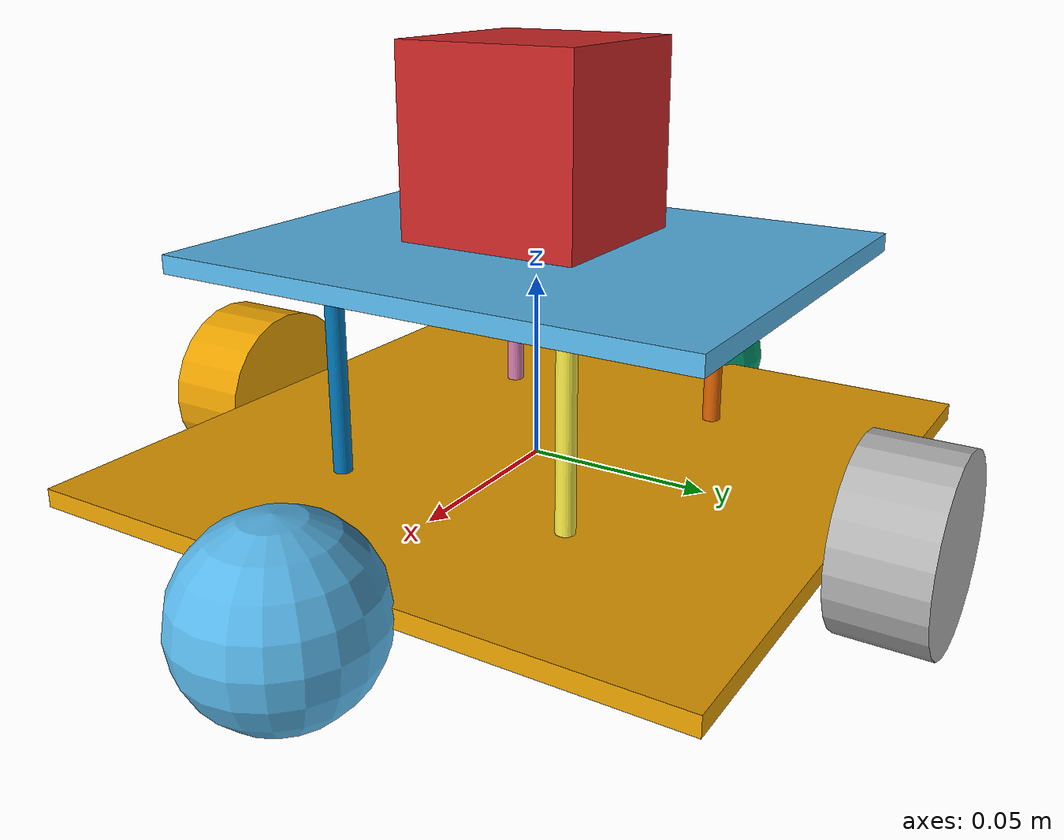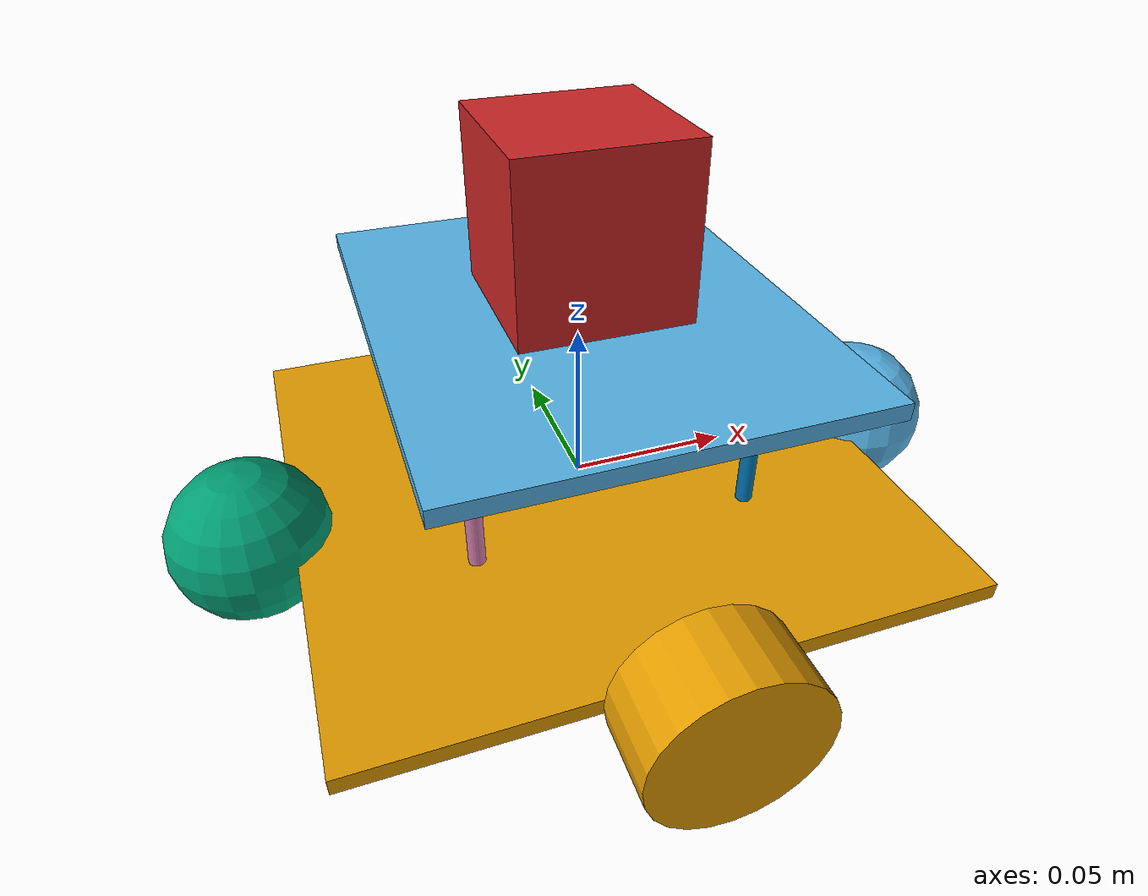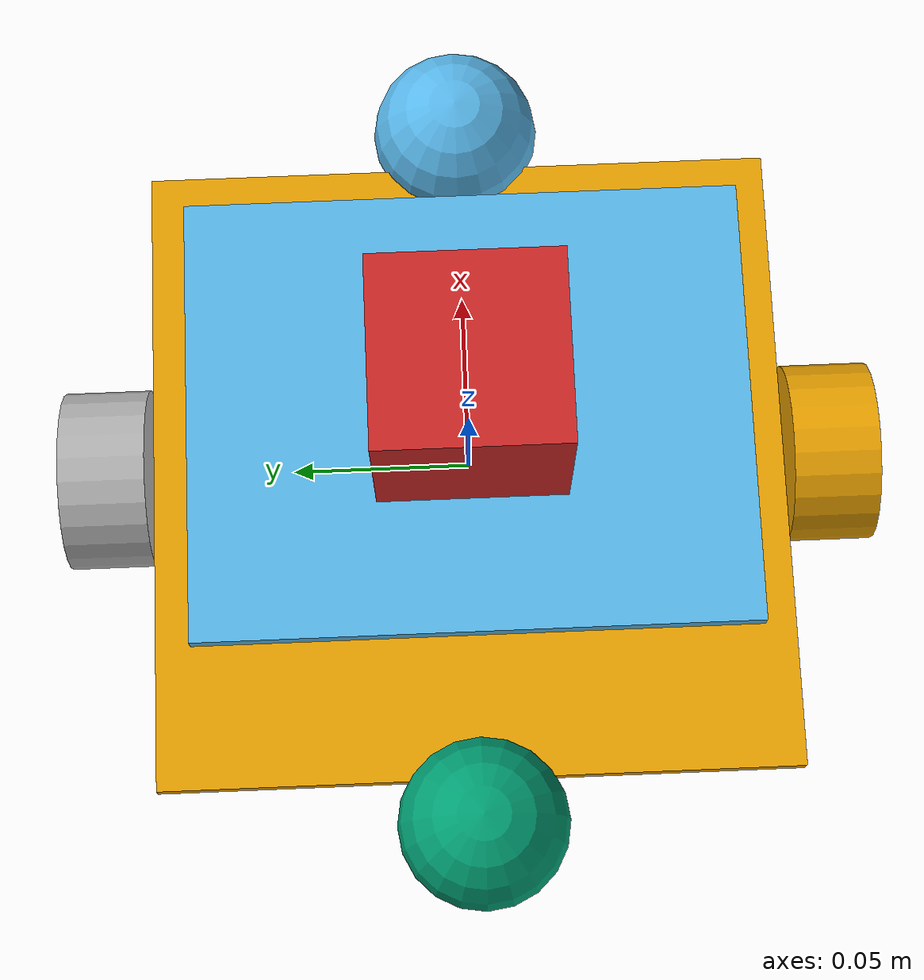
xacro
<?xml version="1.0"?>
<robot xmlns:xacro="http://www.ros.org/wiki/xacro" name="omni">

<!--ROS Gazebo plugin-->
<gazebo>
  <plugin name="gazebo_ros_control" filename="libgazebo_ros_control.so">
    <robotNamespace>/omni</robotNamespace>
  </plugin>
</gazebo>

<!--xacro constants used for robot dimensions-->
<xacro:property name="wb_w" value="0.18"/>
<xacro:property name="wb_h" value="0.005"/>
<xacro:property name="wb_d" value="0.18"/>
<xacro:property name="wb_m" value="0.23"/>

<xacro:property name="ct_w" value="${wb_w/1.21}"/>
<xacro:property name="ct_h" value="${wb_h}"/>
<xacro:property name="ct_d" value="${wb_d/1.51}"/>
<xacro:property name="ct_m" value="${((ct_w*ct_d)/(wb_w*wb_d))*wb_m}"/>

<!-- Size of square 'camera' box -->
<xacro:property name="camera_link" value="0.05" />

<xacro:property name="p_r" value="0.0025"/>
<xacro:property name="p_l" value="0.0515"/>
<xacro:property name="p_m" value="0.032"/>

<xacro:property name="w_r" value="0.0251"/>
<xacro:property name="w_l" value="0.024"/>
<xacro:property name="w_m" value="0.60"/>

<xacro:property name="b_r" value="0.024"/>
<xacro:property name="b_m" value="0.60"/>

<!--macros used to define inertia and geometry tags-->
<xacro:macro name="wb_inertial" params="mass depth width height">
  <inertial>
    <mass value="${mass}"/>
    <inertia
              ixx="${(1/12)*mass*(width+height)}"
              ixy="0.0"
              ixz="0.0"
              iyy="${(1/12)*mass*(depth+height)}"
              iyz="0.0"
              izz="${(1/12)*mass*(width+depth)}" />
  </inertial>
</xacro:macro>

<xacro:macro name="wb_dim" params="depth width height">
  <geometry>
    <box size="${depth} ${width} ${height}"/>
  </geometry>
</xacro:macro>

<xacro:macro name="support_gen" params="name">
  <link name= "support_${name}">
    <visual>
      <xacro:wheel_dim length="${p_l}" radius="${p_r}"/>
    </visual>
    <collision>
      <xacro:wheel_dim length="${p_l}" radius="${p_r}"/>
    </collision>
    <xacro:wheel_inertia mass="${p_m}" length="${p_l*p_l}" radius="${p_r*p_r}" />
  </link>
</xacro:macro>

<xacro:macro name="wheel_dim" params="length radius">
  <geometry>
    <cylinder length = "${length}" radius = "${radius}"/>
  </geometry>
</xacro:macro>
<xacro:macro name="wheel_inertia" params="mass length radius">
  <inertial>
    <mass value="${mass}"/>
      <inertia ixx="${(1/12)*mass*((3*radius+length))}"
               ixy="0.0"
               ixz="0.0"
               iyy="${(1/12)*mass*((3*radius+length))}"
               iyz="0.0"
               izz="${(1/2)*mass*radius}"/>
    </inertial>
</xacro:macro>

<xacro:macro name="b_dim" params="radius">
  <geometry>
    <sphere radius = "${radius}"/>
  </geometry>
</xacro:macro>

<xacro:macro name="b_inertia" params="mass radius">
  <inertial>
    <mass value="${mass}"/>
      <inertia ixx="${(2/5)*mass*radius}"
               ixy="0.0"
               ixz="0.0"
               iyy="${(2/5)*mass*radius}"
               iyz="0.0"
               izz="${(2/5)*mass*radius}"/>
    </inertial>
</xacro:macro>

  <!-- link definitions-->
  <link name = "wheel_base">
    <visual>
      <xacro:wb_dim depth="${wb_d}" width="${wb_w}" height="${wb_h}"/>
    </visual>
    <collision>
      <xacro:wb_dim depth="${wb_d}" width="${wb_w}" height="${wb_h}"/>
    </collision>
    <!--depth, width and height parameters are squared before being passed in, to simplify inertia calculations-->
    <xacro:wb_inertial mass="${wb_m}" depth="${wb_d*wb_d}" width="${wb_w*wb_w}" height="${wb_h*wb_h}"/>
  </link>

  <link name="cam_tier">
    <visual>
      <xacro:wb_dim depth="${ct_d}" width="${ct_w}" height="${ct_h}"/>
    </visual>
    <collision>
      <xacro:wb_dim depth="${ct_d}" width="${ct_w}" height="${ct_h}"/>
    </collision>
    <!--depth, width and height parameters are squared before being passed in, to simplify inertia calculations-->
    <xacro:wb_inertial mass="${wb_m}" depth="${ct_d*ct_d}" width="${ct_w*ct_w}" height="${ct_h*ct_h}"/>
  </link>

  <!-- Camera -->
  <link name="cam">
    <visual>
      <origin xyz="0 0 0" rpy="0 0 0"/>
      <geometry>
        <box size="${camera_link} ${camera_link} ${camera_link}"/>
      </geometry>
      <material name="red"/>
    </visual>

    <collision>
      <origin xyz="0 0 0" rpy="0 0 0"/>
      <geometry>
        <box size="${camera_link} ${camera_link} ${camera_link}"/>
      </geometry>
    </collision>
   <xacro:wb_inertial mass="1e-5" depth="${camera_link}" width="${camera_link}" height="${camera_link}"/>
  </link>

  <xacro:support_gen name="lf"/>
  <xacro:support_gen name="lr"/>
  <xacro:support_gen name="rf"/>
  <xacro:support_gen name="rr"/>

  <link name = "left_wheel">
    <visual>
      <xacro:wheel_dim length="${w_l}" radius="${w_r}"/>
    </visual>
    <collision>
      <xacro:wheel_dim length="${w_l}" radius="${w_r}"/>
    </collision>
    <!--length and radius parameters are squared before being passed in, to simplify inertia calculations-->
    <xacro:wheel_inertia mass="${w_m}" length="${w_l*w_l}" radius="${w_r*w_r}" />
  </link>

  <link name = "right_wheel">
    <visual>
      <xacro:wheel_dim length="${w_l}" radius="${w_r}"/>
    </visual>
    <collision>
      <xacro:wheel_dim length="${w_l}" radius="${w_r}"/>
    </collision>
    <!--length and radius parameters are squared before being passed in, to simplify inertia calculations-->
    <xacro:wheel_inertia mass="${w_m}" length="${w_l*w_l}" radius="${w_r*w_r}" />
  </link>

  <link name = "bearing_front">
    <visual>
      <xacro:b_dim radius="${b_r}"/>
    </visual>
    <collision>
      <xacro:b_dim radius="${b_r}"/>
    </collision>
    <!--radius parameters are squared before being passed in, to simplify inertia calculations-->
    <xacro:b_inertia mass="${b_m}" radius="${b_r*b_r}"/>
  </link>

  <link name = "bearing_rear">
    <visual>
     <xacro:b_dim radius="${b_r}"/>
    </visual>
    <collision>
      <xacro:b_dim radius="${b_r}"/>
    </collision>
    <!--radius parameters are squared before being passed in, to simplify inertia calculations-->
    <xacro:b_inertia mass="${b_m}" radius="${b_r*b_r}"/>
  </link>

  <!--joint definitions-->
  <joint name = "wb_lw_joint" type = "continuous">
    <parent link = "wheel_base"/>
    <child link= "left_wheel"/>
    <axis xyz = "0 0 1"/>
    <!--xyz parameters set using macros to allow joint position to scale if the constants are changed-->
    <origin rpy="0 1.57075 1.57075" xyz="0 ${(wb_w/2)+(w_l/2)} 0"/>
    <dynamics friction="14.595"/>
    <limit effort="1000.0" velocity="3.12928"/>
  </joint>

  <joint name = "wb_rw_joint" type = "continuous">
    <parent link = "wheel_base"/>
    <child link= "right_wheel"/>
    <axis xyz = "0 0 1"/>
    <!--xyz parameters set using macros to allow joint position to scale if the constants are changed-->
    <origin rpy="0 1.57075 1.57075" xyz="0 -${(wb_w/2)+(w_l/2)} 0"/>
    <dynamics friction="14.595"/>
    <limit effort="1000.0" velocity="3.12928"/>
  </joint>

  <joint name = "wb_bf_joint" type = "fixed">
    <parent link = "wheel_base"/>
    <child link= "bearing_front"/>
    <!--xyz parameters set using macros to allow joint position to scale if the constants are changed-->
    <origin rpy="0 0 0" xyz="${(wb_w/2)+(w_l/2)} 0 0"/>
  </joint>

  <joint name = "wb_br_joint" type = "fixed">
    <parent link = "wheel_base"/>
    <child link= "bearing_rear"/>
    <!--xyz parameters set using macros to allow joint position to scale if the constants are changed-->
    <origin rpy="0 0 0" xyz="-${(wb_w/2)+(w_l/2)} 0 0"/>
  </joint>

  <joint name="slf_wb_joint" type ="fixed">
    <parent link = "wheel_base"/>
    <child link= "support_lf"/>
    <!--xyz parameters set using macros to allow joint position to scale if the constants are changed-->
    <origin rpy="0 0 0" xyz="${ct_w/1.77/2} ${ct_d/1.77/2} ${(wb_h/2)+(p_l/2)}"/>
  </joint>

  <joint name="slr_wb_joint" type ="fixed">
    <parent link = "wheel_base"/>
    <child link= "support_lr"/>
    <!--xyz parameters set using macros to allow joint position to scale if the constants are changed-->
    <origin rpy="0 0 0" xyz="${ct_w/1.77/2} -${ct_d/1.77/2} ${(wb_h/2)+(p_l/2)}"/>
  </joint>

  <joint name="srf_wb_joint" type ="fixed">
    <parent link = "wheel_base"/>
    <child link= "support_rf"/>
    <!--xyz parameters set using macros to allow joint position to scale if the constants are changed-->
    <origin rpy="0 0 0" xyz="${-ct_w/1.77/2} ${ct_d/1.77/2} ${(wb_h/2)+(p_l/2)}"/>
  </joint>

  <joint name="srr_wb_joint" type ="fixed">
    <parent link = "wheel_base"/>
    <child link= "support_rr"/>
    <!--xyz parameters set using macros to allow joint position to scale if the constants are changed-->
    <origin rpy="0 0 0" xyz="-${ct_w/1.77/2} -${ct_d/1.77/2} ${(wb_h/2)+(p_l/2)}"/>
  </joint>

  <joint name="ct_wb_joint" type="fixed">
    <parent link = "wheel_base"/>
    <child link= "cam_tier"/>
    <!--xyz parameters set using macros to allow joint position to scale if the constants are changed-->
    <origin rpy="0 0 0" xyz="0 0 ${wb_h+p_l}"/>
  </joint>

  <joint name="camera_joint" type="fixed">
    <parent link="wheel_base"/>
    <child link="cam"/>
    <axis xyz="0 1 0" />
    <!--xyz parameters set using macros to allow joint position to scale if the constants are changed-->
    <origin xyz="0 0 ${2*wb_h+p_l+(camera_link/2)}" rpy="0 0 0"/>
  </joint>

  <!--transmission definitions-->
  <transmission name="trans_left">
		<type>transmission_interface/SimpleTransmission</type>
		<joint name="wb_lw_joint">
			<hardwareInterface>hardware_interface/VelocityJointInterface</hardwareInterface>
		</joint>
		<actuator name="left_wheel">
			<mechanicalReduction>1</mechanicalReduction>
			<hardwareInterface>hardware_interface/VelocityJointInterface</hardwareInterface>
		</actuator>
	</transmission>

  <transmission name="trans_right">
		<type>transmission_interface/SimpleTransmission</type>
		<joint name="wb_rw_joint">
			<hardwareInterface>hardware_interface/VelocityJointInterface</hardwareInterface>
		</joint>
		<actuator name="right_wheel">
			<mechanicalReduction>1</mechanicalReduction>
			<hardwareInterface>hardware_interface/VelocityJointInterface</hardwareInterface>
		</actuator>
	</transmission>

  <!--gazebo camera plugin-->
  <gazebo reference="cam">
    <sensor name="camera" type="wideanglecamera">
      <camera>
        <horizontal_fov>6.283</horizontal_fov>
        <image>
          <width>320</width>
          <height>240</height>
        </image>
        <clip>
          <near>0.1</near>
          <far>100</far>
        </clip>
        <!-- A new section named `lens`. -->
        <lens>
          <!-- type element is mandatory -->
          <type>custom</type>
          <!-- manually defined mapping function r = c1*f*fun(theta/c2 + c3) -->
          <!-- More information here: https://en.wikipedia.org/wiki/Fisheye_lens#Mapping_function -->
          <custom_function>
            <c1>1.05</c1>
            <!-- linear scaling -->
            <c2>4</c2>
            <!-- angle scaling -->
            <f>1.0</f>
            <!-- one more scaling parameter -->
            <fun>tan</fun>
            <!-- one of sin,tan,id -->
          </custom_function>
          <!-- if it is set to `true` your horizontal FOV will ramain as defined -->
          <!-- othervise it depends on lens type and custom function, if there is one -->
          <scale_to_hfov>true</scale_to_hfov>
          <!-- clip everything that is outside of this angle -->
          <cutoff_angle>3.1415</cutoff_angle>
          <!-- resolution of the cubemap texture, the highter it is - the sharper is your image -->
          <env_texture_size>512</env_texture_size>
        </lens>
        <always_on>1</always_on>
        <update_rate>30</update_rate>
      </camera>
      <plugin name="camera_controller" filename="libgazebo_ros_camera.so">
        <alwaysOn>true</alwaysOn>
        <updateRate>0.0</updateRate>
        <cameraName>camera1</cameraName>
        <imageTopicName>image_raw</imageTopicName>
        <cameraInfoTopicName>camera_info</cameraInfoTopicName>
        <frameName>camera_link</frameName>
        <hackBaseline>0.07</hackBaseline>
        <distortionK1>0.0</distortionK1>
        <distortionK2>0.0</distortionK2>
        <distortionK3>0.0</distortionK3>
        <distortionT1>0.0</distortionT1>
        <distortionT2>0.0</distortionT2>
      </plugin>
    </sensor>
  </gazebo>
</robot>
